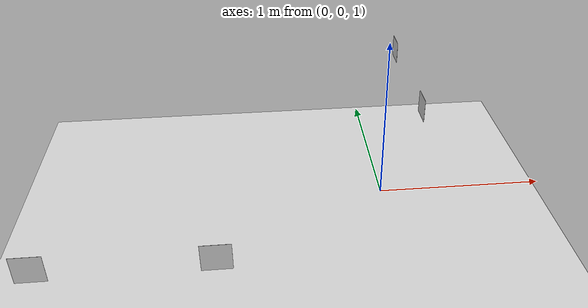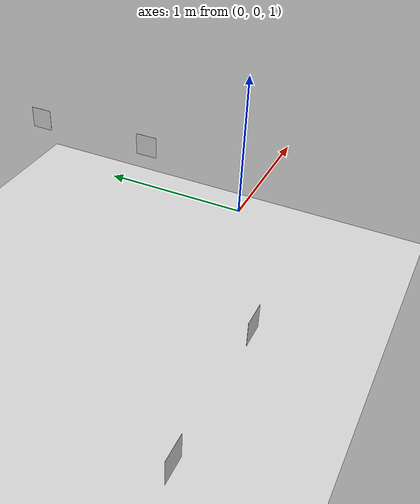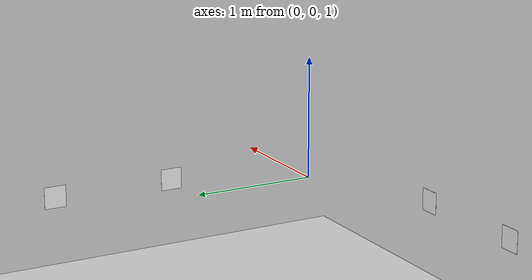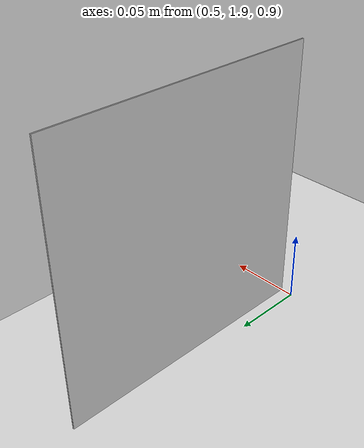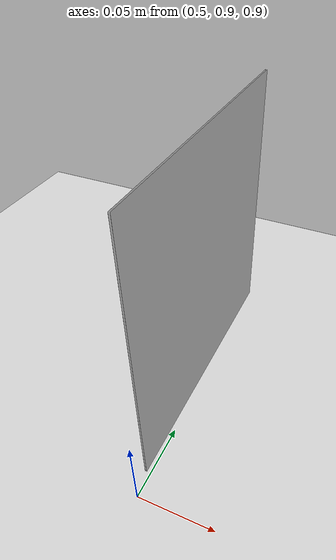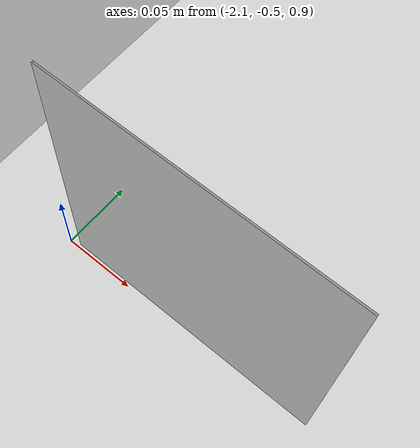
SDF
<sdf version="1.6">
 <world name="default">
  <physics name="normal" type="ode">
   <real_time_update_rate>1000</real_time_update_rate>
   <max_step_size>0.001</max_step_size>
  </physics>
  <include><uri>model://ground_plane</uri></include>
  <include><uri>model://sun</uri></include>
  <model name="marker0">
   <include><static>true</static><uri>model://marker_0</uri></include>
   <pose>0.5 1 1 0 -1.5707963267948966 0</pose>
  </model>
  <model name="marker1">
   <include><static>true</static><uri>model://marker_1</uri></include>
   <pose>0.5 2 1 0 -1.5707963267948966 0</pose>
  </model>
  <model name="marker2">
   <include><static>true</static><uri>model://marker_2</uri></include>
   <pose>-1 -0.5 1 0 -1.5707963267948966 -1.5707963267948966</pose>
  </model>
  <model name="marker3">
   <include><static>true</static><uri>model://marker_3</uri></include>
   <pose>-2 -0.5 1 0 -1.5707963267948966 -1.5707963267948966</pose>
  </model>
 </world>
</sdf>

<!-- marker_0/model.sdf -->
<sdf version='1.5'>
  <model name='marker_0'>

    <link name='marker'>
      <pose frame=''>0 0 0 0 0 0</pose>
      <visual name='visual'>
        <geometry>
          <box>
            <size>0.1778 0.1778 1e-5</size>
          </box>
        </geometry>
        <material>
          <script>
            <uri>model://marker_0/materials/scripts</uri>
            <uri>model://marker_0/materials/textures</uri>
            <name>ArucoVisualMarker0/Marker</name>
          </script>
          <ambient>1 1 1 1</ambient>
          <diffuse>1 1 1 1</diffuse>
          <specular>0 0 0 1</specular>
          <emissive>1 1 1 0</emissive>
          <shader type='vertex'>
            <normal_map>__default__</normal_map>
          </shader>
        </material>
        <pose frame=''>0 0 0 0 0 0</pose>
        <cast_shadows>1</cast_shadows>
        <transparency>0</transparency>
      </visual>
      <collision name='collision'>
        <laser_retro>0</laser_retro>
        <max_contacts>10</max_contacts>
        <pose frame=''>0 0 0 0 0 0</pose>
        <geometry>
          <box>
            <size>0.1778 0.1778 1e-05</size>
          </box>
        </geometry>
      </collision>
    </link>

    <link name='marker_pad'>
      <pose frame='marker'>0 0 -1e-3 0 0 0</pose>
      <visual name='visual'>
        <geometry>
          <box>
            <size>0.1778 0.1778 1e-5</size>
          </box>
        </geometry>
        <material>
          <lighting>1</lighting>
          <script>
            <uri>file://media/materials/scripts/gazebo.material</uri>
            <name>Gazebo/White</name>
          </script>
          <ambient>0.3 0.3 0.3 1</ambient>
          <diffuse>0.7 0.7 0.7 1</diffuse>
          <specular>0.01 0.01 0.01 1</specular>
          <emissive>1 1 1 0</emissive>
          <shader type='vertex'>
            <normal_map>__default__</normal_map>
          </shader>
        </material>
        <cast_shadows>1</cast_shadows>
        <transparency>0</transparency>
      </visual>
      <collision name='collision'>
        <laser_retro>0</laser_retro>
        <max_contacts>10</max_contacts>
        <pose frame=''>0 0 0 0 0 0</pose>
        <geometry>
          <box>
            <size>0.1778 0.1778 1e-5</size>
          </box>
        </geometry>
      </collision>
    </link>

    <joint name='marker_JOINT_marker_pad' type='revolute'>
      <parent>marker</parent>
      <child>marker_pad</child>
      <pose frame=''>0 0 0 0 0 0</pose>
      <axis>
        <xyz>0 0 1</xyz>
        <limit>
          <upper>0</upper>
          <lower>0</lower>
        </limit>
      </axis>
    </joint>

    <static>1</static>
    <allow_auto_disable>1</allow_auto_disable>

  </model>
</sdf>

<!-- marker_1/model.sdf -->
<sdf version='1.5'>
  <model name='marker_1'>

    <link name='marker'>
      <pose frame=''>0 0 0 0 0 0</pose>
      <visual name='visual'>
        <geometry>
          <box>
            <size>0.1778 0.1778 1e-5</size>
          </box>
        </geometry>
        <material>
          <script>
            <uri>model://marker_1/materials/scripts</uri>
            <uri>model://marker_1/materials/textures</uri>
            <name>ArucoVisualMarker1/Marker</name>
          </script>
          <ambient>1 1 1 1</ambient>
          <diffuse>1 1 1 1</diffuse>
          <specular>0 0 0 1</specular>
          <emissive>1 1 1 0</emissive>
          <shader type='vertex'>
            <normal_map>__default__</normal_map>
          </shader>
        </material>
        <pose frame=''>0 0 0 0 0 0</pose>
        <cast_shadows>1</cast_shadows>
        <transparency>0</transparency>
      </visual>
      <collision name='collision'>
        <laser_retro>0</laser_retro>
        <max_contacts>10</max_contacts>
        <pose frame=''>0 0 0 0 0 0</pose>
        <geometry>
          <box>
            <size>0.1778 0.1778 1e-05</size>
          </box>
        </geometry>
      </collision>
    </link>

    <link name='marker_pad'>
      <pose frame='marker'>0 0 -1e-3 0 0 0</pose>
      <visual name='visual'>
        <geometry>
          <box>
            <size>0.1778 0.1778 1e-5</size>
          </box>
        </geometry>
        <material>
          <lighting>1</lighting>
          <script>
            <uri>file://media/materials/scripts/gazebo.material</uri>
            <name>Gazebo/White</name>
          </script>
          <ambient>0.3 0.3 0.3 1</ambient>
          <diffuse>0.7 0.7 0.7 1</diffuse>
          <specular>0.01 0.01 0.01 1</specular>
          <emissive>1 1 1 0</emissive>
          <shader type='vertex'>
            <normal_map>__default__</normal_map>
          </shader>
        </material>
        <cast_shadows>1</cast_shadows>
        <transparency>0</transparency>
      </visual>
      <collision name='collision'>
        <laser_retro>0</laser_retro>
        <max_contacts>10</max_contacts>
        <pose frame=''>0 0 0 0 0 0</pose>
        <geometry>
          <box>
            <size>0.1778 0.1778 1e-5</size>
          </box>
        </geometry>
      </collision>
    </link>

    <joint name='marker_JOINT_marker_pad' type='revolute'>
      <parent>marker</parent>
      <child>marker_pad</child>
      <pose frame=''>0 0 0 0 0 0</pose>
      <axis>
        <xyz>0 0 1</xyz>
        <limit>
          <upper>0</upper>
          <lower>0</lower>
        </limit>
      </axis>
    </joint>

    <static>1</static>
    <allow_auto_disable>1</allow_auto_disable>

  </model>
</sdf>

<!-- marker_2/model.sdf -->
<sdf version='1.5'>
  <model name='marker_2'>

    <link name='marker'>
      <pose frame=''>0 0 0 0 0 0</pose>
      <visual name='visual'>
        <geometry>
          <box>
            <size>0.1778 0.1778 1e-5</size>
          </box>
        </geometry>
        <material>
          <script>
            <uri>model://marker_2/materials/scripts</uri>
            <uri>model://marker_2/materials/textures</uri>
            <name>ArucoVisualMarker2/Marker</name>
          </script>
          <ambient>1 1 1 1</ambient>
          <diffuse>1 1 1 1</diffuse>
          <specular>0 0 0 1</specular>
          <emissive>1 1 1 0</emissive>
          <shader type='vertex'>
            <normal_map>__default__</normal_map>
          </shader>
        </material>
        <pose frame=''>0 0 0 0 0 0</pose>
        <cast_shadows>1</cast_shadows>
        <transparency>0</transparency>
      </visual>
      <collision name='collision'>
        <laser_retro>0</laser_retro>
        <max_contacts>10</max_contacts>
        <pose frame=''>0 0 0 0 0 0</pose>
        <geometry>
          <box>
            <size>0.1778 0.1778 1e-05</size>
          </box>
        </geometry>
      </collision>
    </link>

    <link name='marker_pad'>
      <pose frame='marker'>0 0 -1e-3 0 0 0</pose>
      <visual name='visual'>
        <geometry>
          <box>
            <size>0.1778 0.1778 1e-5</size>
          </box>
        </geometry>
        <material>
          <lighting>1</lighting>
          <script>
            <uri>file://media/materials/scripts/gazebo.material</uri>
            <name>Gazebo/White</name>
          </script>
          <ambient>0.3 0.3 0.3 1</ambient>
          <diffuse>0.7 0.7 0.7 1</diffuse>
          <specular>0.01 0.01 0.01 1</specular>
          <emissive>1 1 1 0</emissive>
          <shader type='vertex'>
            <normal_map>__default__</normal_map>
          </shader>
        </material>
        <cast_shadows>1</cast_shadows>
        <transparency>0</transparency>
      </visual>
      <collision name='collision'>
        <laser_retro>0</laser_retro>
        <max_contacts>10</max_contacts>
        <pose frame=''>0 0 0 0 0 0</pose>
        <geometry>
          <box>
            <size>0.1778 0.1778 1e-5</size>
          </box>
        </geometry>
      </collision>
    </link>

    <joint name='marker_JOINT_marker_pad' type='revolute'>
      <parent>marker</parent>
      <child>marker_pad</child>
      <pose frame=''>0 0 0 0 0 0</pose>
      <axis>
        <xyz>0 0 1</xyz>
        <limit>
          <upper>0</upper>
          <lower>0</lower>
        </limit>
      </axis>
    </joint>

    <static>1</static>
    <allow_auto_disable>1</allow_auto_disable>

  </model>
</sdf>

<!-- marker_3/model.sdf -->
<sdf version='1.5'>
  <model name='marker_3'>

    <link name='marker'>
      <pose frame=''>0 0 0 0 0 0</pose>
      <visual name='visual'>
        <geometry>
          <box>
            <size>0.1778 0.1778 1e-5</size>
          </box>
        </geometry>
        <material>
          <script>
            <uri>model://marker_3/materials/scripts</uri>
            <uri>model://marker_3/materials/textures</uri>
            <name>ArucoVisualMarker3/Marker</name>
          </script>
          <ambient>1 1 1 1</ambient>
          <diffuse>1 1 1 1</diffuse>
          <specular>0 0 0 1</specular>
          <emissive>1 1 1 0</emissive>
          <shader type='vertex'>
            <normal_map>__default__</normal_map>
          </shader>
        </material>
        <pose frame=''>0 0 0 0 0 0</pose>
        <cast_shadows>1</cast_shadows>
        <transparency>0</transparency>
      </visual>
      <collision name='collision'>
        <laser_retro>0</laser_retro>
        <max_contacts>10</max_contacts>
        <pose frame=''>0 0 0 0 0 0</pose>
        <geometry>
          <box>
            <size>0.1778 0.1778 1e-05</size>
          </box>
        </geometry>
      </collision>
    </link>

    <link name='marker_pad'>
      <pose frame='marker'>0 0 -1e-3 0 0 0</pose>
      <visual name='visual'>
        <geometry>
          <box>
            <size>0.1778 0.1778 1e-5</size>
          </box>
        </geometry>
        <material>
          <lighting>1</lighting>
          <script>
            <uri>file://media/materials/scripts/gazebo.material</uri>
            <name>Gazebo/White</name>
          </script>
          <ambient>0.3 0.3 0.3 1</ambient>
          <diffuse>0.7 0.7 0.7 1</diffuse>
          <specular>0.01 0.01 0.01 1</specular>
          <emissive>1 1 1 0</emissive>
          <shader type='vertex'>
            <normal_map>__default__</normal_map>
          </shader>
        </material>
        <cast_shadows>1</cast_shadows>
        <transparency>0</transparency>
      </visual>
      <collision name='collision'>
        <laser_retro>0</laser_retro>
        <max_contacts>10</max_contacts>
        <pose frame=''>0 0 0 0 0 0</pose>
        <geometry>
          <box>
            <size>0.1778 0.1778 1e-5</size>
          </box>
        </geometry>
      </collision>
    </link>

    <joint name='marker_JOINT_marker_pad' type='revolute'>
      <parent>marker</parent>
      <child>marker_pad</child>
      <pose frame=''>0 0 0 0 0 0</pose>
      <axis>
        <xyz>0 0 1</xyz>
        <limit>
          <upper>0</upper>
          <lower>0</lower>
        </limit>
      </axis>
    </joint>

    <static>1</static>
    <allow_auto_disable>1</allow_auto_disable>

  </model>
</sdf>
